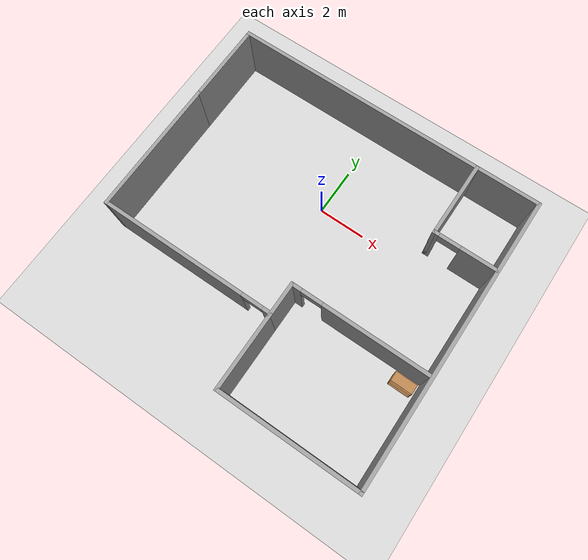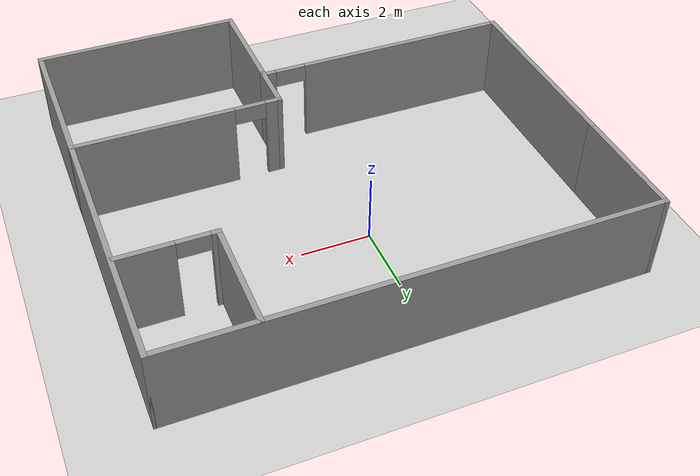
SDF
<sdf version="1.7">
 <world name="default">
  <light name="sun" type="directional">
   <pose>0 0 10 0 -0 0</pose>
   <diffuse>0.8 0.8 0.8 1</diffuse>
   <specular>0.2 0.2 0.2 1</specular>
   <attenuation>
    <range>1000</range>
    <constant>0.9</constant>
    <linear>0.01</linear>
    <quadratic>0.001</quadratic>
   </attenuation>
   <direction>-0.5 0.1 -0.9</direction>
   <spot><inner_angle>0</inner_angle><outer_angle>0</outer_angle><falloff>0</falloff></spot>
  </light>
  <model name="ground_plane">
   <static>1</static>
   <link name="link">
    <collision name="collision">
     <geometry><plane><normal>0 0 1</normal><size>100 100</size></plane></geometry>
     <surface>
      <contact><collide_bitmask>65535</collide_bitmask></contact>
      <friction><ode><mu>100</mu><mu2>50</mu2></ode></friction>
     </surface>
    </collision>
    <visual name="visual">
     <cast_shadows>0</cast_shadows>
     <geometry><plane><normal>0 0 1</normal><size>100 100</size></plane></geometry>
     <material>
      <script><uri>file://media/materials/scripts/gazebo.material</uri><name>Gazebo/Grey</name></script>
     </material>
    </visual>
   </link>
  </model>
  <gravity>0 0 -9.8</gravity>
  <magnetic_field>6e-06 2.3e-05 -4.2e-05</magnetic_field>
  <atmosphere type="adiabatic"/>
  <physics type="ode">
   <max_step_size>0.001</max_step_size>
   <real_time_factor>1</real_time_factor>
   <real_time_update_rate>1000</real_time_update_rate>
  </physics>
  <scene><ambient>0.4 0.4 0.4 1</ambient><background>0.7 0.7 0.7 1</background><shadows>1</shadows></scene>
  <audio><device>default</device></audio>
  <spherical_coordinates>
   <surface_model>EARTH_WGS84</surface_model>
   <latitude_deg>0</latitude_deg>
   <longitude_deg>0</longitude_deg>
   <elevation>0</elevation>
   <heading_deg>0</heading_deg>
  </spherical_coordinates>
  <model name="test_model">
   <pose>0.402729 -2.09897 0 0 -0 0</pose>
   <link name="Wall_10">
    <collision name="Wall_10_Collision">
     <geometry><box><size>12.25 0.15 2.5</size></box></geometry>
     <pose>0 0 1.25 0 -0 0</pose>
    </collision>
    <visual name="Wall_10_Visual">
     <pose>0 0 1.25 0 -0 0</pose>
     <geometry><box><size>12.25 0.15 2.5</size></box></geometry>
     <material>
      <script><uri>file://media/materials/scripts/gazebo.material</uri><name>Gazebo/Grey</name></script>
      <ambient>1 1 1 1</ambient>
     </material>
     <meta><layer>0</layer></meta>
    </visual>
    <pose>6.675 0 0 0 -0 -1.5708</pose>
   </link>
   <link name="Wall_11">
    <collision name="Wall_11_Collision">
     <geometry><box><size>6 0.15 2.5</size></box></geometry>
     <pose>0 0 1.25 0 -0 0</pose>
    </collision>
    <visual name="Wall_11_Visual">
     <pose>0 0 1.25 0 -0 0</pose>
     <geometry><box><size>6 0.15 2.5</size></box></geometry>
     <material>
      <script><uri>file://media/materials/scripts/gazebo.material</uri><name>Gazebo/Grey</name></script>
      <ambient>1 1 1 1</ambient>
     </material>
     <meta><layer>0</layer></meta>
    </visual>
    <pose>3.75 -6.05 0 0 -0 3.14159</pose>
   </link>
   <link name="Wall_12">
    <collision name="Wall_12_Collision">
     <geometry><box><size>3.25 0.15 2.5</size></box></geometry>
     <pose>0 0 1.25 0 -0 0</pose>
    </collision>
    <visual name="Wall_12_Visual">
     <pose>0 0 1.25 0 -0 0</pose>
     <geometry><box><size>3.25 0.15 2.5</size></box></geometry>
     <material>
      <script><uri>file://media/materials/scripts/gazebo.material</uri><name>Gazebo/Grey</name></script>
      <ambient>1 1 1 1</ambient>
     </material>
     <meta><layer>0</layer></meta>
    </visual>
    <pose>0.825 -4.5 0 0 -0 1.5708</pose>
   </link>
   <link name="Wall_15">
    <collision name="Wall_15_Collision">
     <geometry><box><size>1.5 0.15 2.5</size></box></geometry>
     <pose>0 0 1.25 0 -0 0</pose>
    </collision>
    <visual name="Wall_15_Visual">
     <pose>0 0 1.25 0 -0 0</pose>
     <geometry><box><size>1.5 0.15 2.5</size></box></geometry>
     <material>
      <script><uri>file://media/materials/scripts/gazebo.material</uri><name>Gazebo/Grey</name></script>
      <ambient>1 1 1 1</ambient>
     </material>
     <meta><layer>0</layer></meta>
    </visual>
    <pose>0.825 -2.275 0 0 -0 1.5708</pose>
   </link>
   <link name="Wall_16">
    <pose>3.75 -1.6 0 0 -0 0</pose>
    <visual name="Wall_16_Visual_0">
     <pose>-2.75609 0 1.25 0 -0 0</pose>
     <geometry><box><size>0.487824 0.15 2.5</size></box></geometry>
     <material>
      <script><uri>file://media/materials/scripts/gazebo.material</uri><name>Gazebo/Grey</name></script>
      <ambient>1 1 1 1</ambient>
     </material>
     <meta><layer>0</layer></meta>
    </visual>
    <collision name="Wall_16_Collision_0">
     <geometry><box><size>0.487824 0.15 2.5</size></box></geometry>
     <pose>-2.75609 0 1.25 0 -0 0</pose>
    </collision>
    <visual name="Wall_16_Visual_1">
     <pose>0.693912 0 1.25 0 -0 0</pose>
     <geometry><box><size>4.61218 0.15 2.5</size></box></geometry>
     <material>
      <script><uri>file://media/materials/scripts/gazebo.material</uri><name>Gazebo/Grey</name></script>
      <ambient>1 1 1 1</ambient>
     </material>
     <meta><layer>0</layer></meta>
    </visual>
    <collision name="Wall_16_Collision_1">
     <geometry><box><size>4.61218 0.15 2.5</size></box></geometry>
     <pose>0.693912 0 1.25 0 -0 0</pose>
    </collision>
    <visual name="Wall_16_Visual_2">
     <pose>-2.06218 0 2.25 0 -0 0</pose>
     <geometry><box><size>0.9 0.15 0.5</size></box></geometry>
     <material>
      <script><uri>file://media/materials/scripts/gazebo.material</uri><name>Gazebo/Grey</name></script>
      <ambient>1 1 1 1</ambient>
     </material>
     <meta><layer>0</layer></meta>
    </visual>
    <collision name="Wall_16_Collision_2">
     <geometry><box><size>0.9 0.15 0.5</size></box></geometry>
     <pose>-2.06218 0 2.25 0 -0 0</pose>
    </collision>
   </link>
   <link name="Wall_20">
    <collision name="Wall_20_Collision">
     <geometry><box><size>3.25 0.15 2.5</size></box></geometry>
     <pose>0 0 1.25 0 -0 0</pose>
    </collision>
    <visual name="Wall_20_Visual">
     <pose>0 0 1.25 0 -0 0</pose>
     <geometry><box><size>3.25 0.15 2.5</size></box></geometry>
     <material>
      <script><uri>file://media/materials/scripts/gazebo.material</uri><name>Gazebo/Grey</name></script>
      <ambient>1 1 1 1</ambient>
     </material>
     <meta><layer>0</layer></meta>
    </visual>
    <pose>4.01609 4.4883 0 0 -0 -1.5708</pose>
   </link>
   <link name="Wall_21">
    <pose>5.31609 2.9383 0 0 -0 0</pose>
    <visual name="Wall_21_Visual_0">
     <pose>-1.23893 0 1.25 0 -0 0</pose>
     <geometry><box><size>0.272132 0.15 2.5</size></box></geometry>
     <material>
      <script><uri>file://media/materials/scripts/gazebo.material</uri><name>Gazebo/Grey</name></script>
      <ambient>1 1 1 1</ambient>
     </material>
     <meta><layer>0</layer></meta>
    </visual>
    <collision name="Wall_21_Collision_0">
     <geometry><box><size>0.272132 0.15 2.5</size></box></geometry>
     <pose>-1.23893 0 1.25 0 -0 0</pose>
    </collision>
    <visual name="Wall_21_Visual_1">
     <pose>0.586066 0 1.25 0 -0 0</pose>
     <geometry><box><size>1.57787 0.15 2.5</size></box></geometry>
     <material>
      <script><uri>file://media/materials/scripts/gazebo.material</uri><name>Gazebo/Grey</name></script>
      <ambient>1 1 1 1</ambient>
     </material>
     <meta><layer>0</layer></meta>
    </visual>
    <collision name="Wall_21_Collision_1">
     <geometry><box><size>1.57787 0.15 2.5</size></box></geometry>
     <pose>0.586066 0 1.25 0 -0 0</pose>
    </collision>
    <visual name="Wall_21_Visual_2">
     <pose>-0.652868 0 2.25 0 -0 0</pose>
     <geometry><box><size>0.9 0.15 0.5</size></box></geometry>
     <material>
      <script><uri>file://media/materials/scripts/gazebo.material</uri><name>Gazebo/Grey</name></script>
      <ambient>1 1 1 1</ambient>
     </material>
     <meta><layer>0</layer></meta>
    </visual>
    <collision name="Wall_21_Collision_2">
     <geometry><box><size>0.9 0.15 0.5</size></box></geometry>
     <pose>-0.652868 0 2.25 0 -0 0</pose>
    </collision>
   </link>
   <link name="Wall_6">
    <pose>-3 -2.9 0 0 -0 3.14159</pose>
    <visual name="Wall_6_Visual_0">
     <pose>-3.60682 0 1.25 0 -0 0</pose>
     <geometry><box><size>0.286362 0.15 2.5</size></box></geometry>
     <material>
      <script><uri>file://media/materials/scripts/gazebo.material</uri><name>Gazebo/Grey</name></script>
      <ambient>1 1 1 1</ambient>
     </material>
     <meta><layer>0</layer></meta>
    </visual>
    <collision name="Wall_6_Collision_0">
     <geometry><box><size>0.286362 0.15 2.5</size></box></geometry>
     <pose>-3.60682 0 1.25 0 -0 0</pose>
    </collision>
    <visual name="Wall_6_Visual_1">
     <pose>0.593181 0 1.25 0 -0 0</pose>
     <geometry><box><size>6.31364 0.15 2.5</size></box></geometry>
     <material>
      <script><uri>file://media/materials/scripts/gazebo.material</uri><name>Gazebo/Grey</name></script>
      <ambient>1 1 1 1</ambient>
     </material>
     <meta><layer>0</layer></meta>
    </visual>
    <collision name="Wall_6_Collision_1">
     <geometry><box><size>6.31364 0.15 2.5</size></box></geometry>
     <pose>0.593181 0 1.25 0 -0 0</pose>
    </collision>
    <visual name="Wall_6_Visual_2">
     <pose>-3.01364 0 2.25 0 -0 0</pose>
     <geometry><box><size>0.9 0.15 0.5</size></box></geometry>
     <material>
      <script><uri>file://media/materials/scripts/gazebo.material</uri><name>Gazebo/Grey</name></script>
      <ambient>1 1 1 1</ambient>
     </material>
     <meta><layer>0</layer></meta>
    </visual>
    <collision name="Wall_6_Collision_2">
     <geometry><box><size>0.9 0.15 0.5</size></box></geometry>
     <pose>-3.01364 0 2.25 0 -0 0</pose>
    </collision>
   </link>
   <link name="Wall_7">
    <collision name="Wall_7_Collision">
     <geometry><box><size>5.75 0.15 2.5</size></box></geometry>
     <pose>0 0 1.25 0 -0 0</pose>
    </collision>
    <visual name="Wall_7_Visual">
     <pose>0 0 1.25 0 -0 0</pose>
     <geometry><box><size>5.75 0.15 2.5</size></box></geometry>
     <material>
      <script><uri>file://media/materials/scripts/gazebo.material</uri><name>Gazebo/Grey</name></script>
      <ambient>1 1 1 1</ambient>
     </material>
     <meta><layer>0</layer></meta>
    </visual>
    <pose>-6.675 -0.1 0 0 -0 1.5708</pose>
   </link>
   <link name="Wall_8">
    <collision name="Wall_8_Collision">
     <geometry><box><size>3.5 0.15 2.5</size></box></geometry>
     <pose>0 0 1.25 0 -0 0</pose>
    </collision>
    <visual name="Wall_8_Visual">
     <pose>0 0 1.25 0 -0 0</pose>
     <geometry><box><size>3.5 0.15 2.5</size></box></geometry>
     <material>
      <script><uri>file://media/materials/scripts/gazebo.material</uri><name>Gazebo/Grey</name></script>
      <ambient>1 1 1 1</ambient>
     </material>
     <meta><layer>0</layer></meta>
    </visual>
    <pose>-6.675 4.375 0 0 -0 1.5708</pose>
   </link>
   <link name="Wall_9">
    <collision name="Wall_9_Collision">
     <geometry><box><size>13.5 0.15 2.5</size></box></geometry>
     <pose>0 0 1.25 0 -0 0</pose>
    </collision>
    <visual name="Wall_9_Visual">
     <pose>0 0 1.25 0 -0 0</pose>
     <geometry><box><size>13.5 0.15 2.5</size></box></geometry>
     <material>
      <script><uri>file://media/materials/scripts/gazebo.material</uri><name>Gazebo/Grey</name></script>
      <ambient>1 1 1 1</ambient>
     </material>
     <meta><layer>0</layer></meta>
    </visual>
    <pose>-0 6.05 0 0 -0 0</pose>
   </link>
   <static>1</static>
  </model>
  <model name="bookshelf">
   <static>1</static>
   <link name="link">
    <inertial><mass>1</mass></inertial>
    <collision name="back">
     <pose>0 0.005 0.6 0 -0 0</pose>
     <geometry><box><size>0.9 0.01 1.2</size></box></geometry>
    </collision>
    <visual name="visual1">
     <pose>0 0.005 0.6 0 -0 0</pose>
     <geometry><box><size>0.9 0.01 1.2</size></box></geometry>
     <material>
      <script><uri>file://media/materials/scripts/gazebo.material</uri><name>Gazebo/Wood</name></script>
     </material>
    </visual>
    <collision name="left_side">
     <pose>0.45 -0.195 0.6 0 -0 0</pose>
     <geometry><box><size>0.02 0.4 1.2</size></box></geometry>
    </collision>
    <visual name="visual2">
     <pose>0.45 -0.195 0.6 0 -0 0</pose>
     <geometry><box><size>0.02 0.4 1.2</size></box></geometry>
     <material>
      <script><uri>file://media/materials/scripts/gazebo.material</uri><name>Gazebo/Wood</name></script>
     </material>
    </visual>
    <collision name="right_side">
     <pose>-0.45 -0.195 0.6 0 -0 0</pose>
     <geometry><box><size>0.02 0.4 1.2</size></box></geometry>
    </collision>
    <visual name="visual3">
     <pose>-0.45 -0.195 0.6 0 -0 0</pose>
     <geometry><box><size>0.02 0.4 1.2</size></box></geometry>
     <material>
      <script><uri>file://media/materials/scripts/gazebo.material</uri><name>Gazebo/Wood</name></script>
     </material>
    </visual>
    <collision name="bottom">
     <pose>0 -0.195 0.03 0 -0 0</pose>
     <geometry><box><size>0.88 0.4 0.06</size></box></geometry>
    </collision>
    <visual name="visual4">
     <pose>0 -0.195 0.03 0 -0 0</pose>
     <geometry><box><size>0.88 0.4 0.06</size></box></geometry>
     <material>
      <script><uri>file://media/materials/scripts/gazebo.material</uri><name>Gazebo/Wood</name></script>
     </material>
    </visual>
    <collision name="top">
     <pose>0 -0.195 1.19 0 -0 0</pose>
     <geometry><box><size>0.88 0.4 0.02</size></box></geometry>
    </collision>
    <visual name="visual5">
     <pose>0 -0.195 1.19 0 -0 0</pose>
     <geometry><box><size>0.88 0.4 0.02</size></box></geometry>
     <material>
      <script><uri>file://media/materials/scripts/gazebo.material</uri><name>Gazebo/Wood</name></script>
     </material>
    </visual>
    <collision name="low_shelf">
     <pose>0 -0.195 0.43 0 -0 0</pose>
     <geometry><box><size>0.88 0.4 0.02</size></box></geometry>
    </collision>
    <visual name="visual6">
     <pose>0 -0.195 0.43 0 -0 0</pose>
     <geometry><box><size>0.88 0.4 0.02</size></box></geometry>
     <material>
      <script><uri>file://media/materials/scripts/gazebo.material</uri><name>Gazebo/Wood</name></script>
     </material>
    </visual>
    <collision name="high_shelf">
     <pose>0 -0.195 0.8 0 -0 0</pose>
     <geometry><box><size>0.88 0.4 0.02</size></box></geometry>
    </collision>
    <visual name="visual7">
     <pose>0 -0.195 0.8 0 -0 0</pose>
     <geometry><box><size>0.88 0.4 0.02</size></box></geometry>
     <material>
      <script><uri>file://media/materials/scripts/gazebo.material</uri><name>Gazebo/Wood</name></script>
     </material>
    </visual>
   </link>
   <pose>6.41919 -4 0 0 -0 0</pose>
  </model>
 </world>
</sdf>
